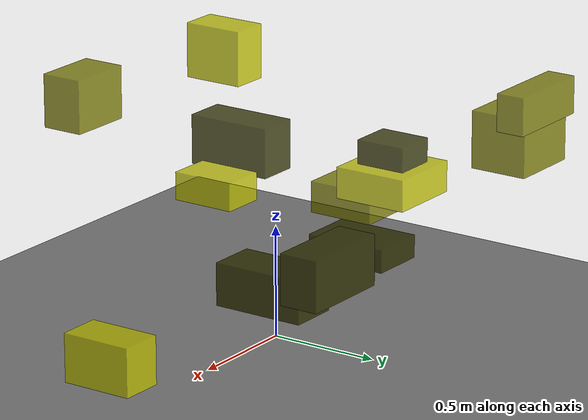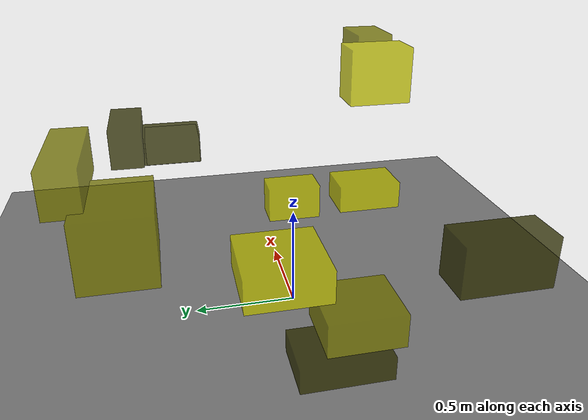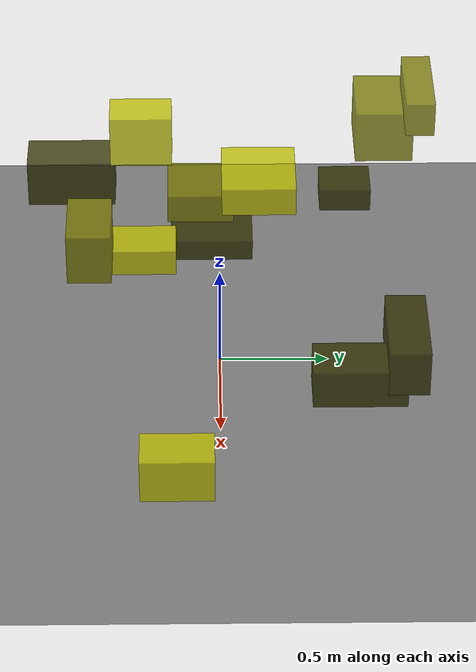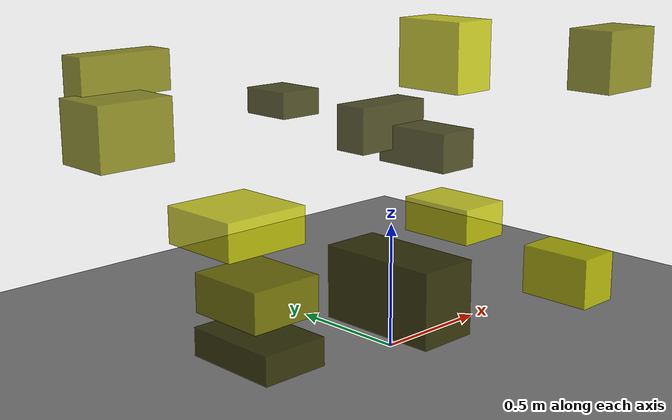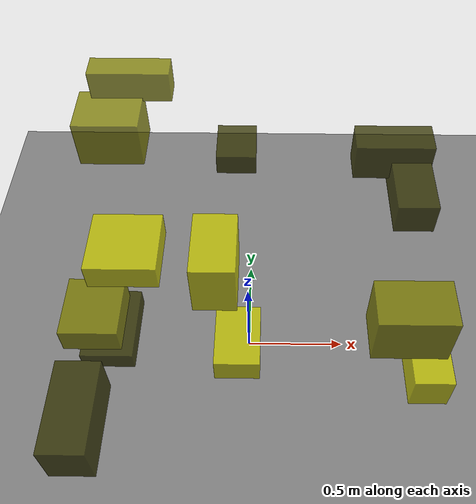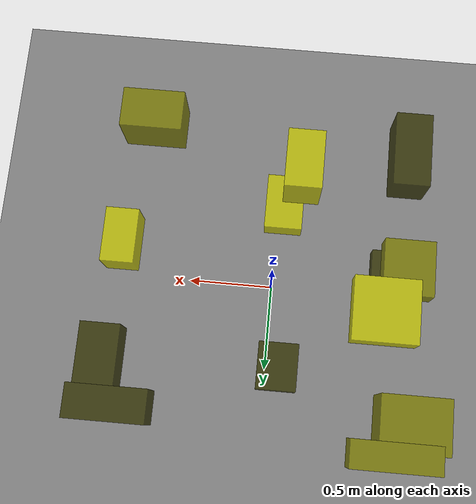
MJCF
<?xml version="1.0"?>
<mujoco model="obstacle_scene">
  <compiler angle="radian" coordinate="local"/>
  <option timestep="0.001" gravity="0 0 -9.81"/>

  <asset>
    <material name="obstacle_mat" rgba="0.8 0.8 0.0 0.8"/>
    <material name="ground_mat" rgba="0.5 0.5 0.5 1"/>
  </asset>

  <worldbody>
    <!-- Ground plane -->
    <geom name="ground" type="plane" size="3 3 0.1" material="ground_mat"/>

    <!-- Obstacles -->
    <body name="obstacle_0" pos="-0.702386 -0.691619 0.576053">
      <geom name="obs_0" type="box" size="0.097981 0.203298 0.115971" rgba="0.2 0.2 0.0 0.8"/>
    </body>
    <body name="obstacle_1" pos="-0.717428 0.767854 0.863236">
      <geom name="obs_1" type="box" size="0.165548 0.132317 0.128531" rgba="0.5 0.5 0.0 0.8"/>
    </body>
    <body name="obstacle_2" pos="-0.105033 -0.344472 1.203029">
      <geom name="obs_2" type="box" size="0.083905 0.134878 0.120797" rgba="0.8 0.8 0.0 0.8"/>
    </body>
    <body name="obstacle_3" pos="0.759220 0.792240 0.686622">
      <geom name="obs_3" type="box" size="0.205189 0.086812 0.109033" rgba="0.2 0.2 0.0 0.8"/>
    </body>
    <body name="obstacle_4" pos="-0.750226 -0.084543 0.422599">
      <geom name="obs_4" type="box" size="0.140209 0.156421 0.071995" rgba="0.5 0.5 0.0 0.8"/>
    </body>
    <body name="obstacle_5" pos="-0.612023 0.187677 0.583666">
      <geom name="obs_5" type="box" size="0.175776 0.172357 0.071401" rgba="0.8 0.8 0.0 0.8"/>
    </body>
    <body name="obstacle_6" pos="-0.705920 -0.033602 0.205137">
      <geom name="obs_6" type="box" size="0.131618 0.194762 0.053272" rgba="0.2 0.2 0.0 0.8"/>
    </body>
    <body name="obstacle_7" pos="0.613550 -0.549806 1.140124">
      <geom name="obs_7" type="box" size="0.142134 0.092432 0.115594" rgba="0.5 0.5 0.0 0.8"/>
    </body>
    <body name="obstacle_8" pos="-0.035292 -0.341965 0.609449">
      <geom name="obs_8" type="box" size="0.099155 0.144928 0.062856" rgba="0.8 0.8 0.0 0.8"/>
    </body>
    <body name="obstacle_9" pos="-0.061385 0.555132 0.925908">
      <geom name="obs_9" type="box" size="0.094522 0.111391 0.052811" rgba="0.2 0.2 0.0 0.8"/>
    </body>
    <body name="obstacle_10" pos="-0.607927 0.915974 1.057402">
      <geom name="obs_10" type="box" size="0.204944 0.064762 0.083479" rgba="0.5 0.5 0.0 0.8"/>
    </body>
    <body name="obstacle_11" pos="0.915751 -0.192846 0.140516">
      <geom name="obs_11" type="box" size="0.098190 0.163253 0.109042" rgba="0.8 0.8 0.0 0.8"/>
    </body>
    <body name="obstacle_12" pos="0.854327 0.589045 0.601056">
      <geom name="obs_12" type="box" size="0.104360 0.201502 0.090877" rgba="0.2 0.2 0.0 0.8"/>
    </body>
  </worldbody>
</mujoco>
